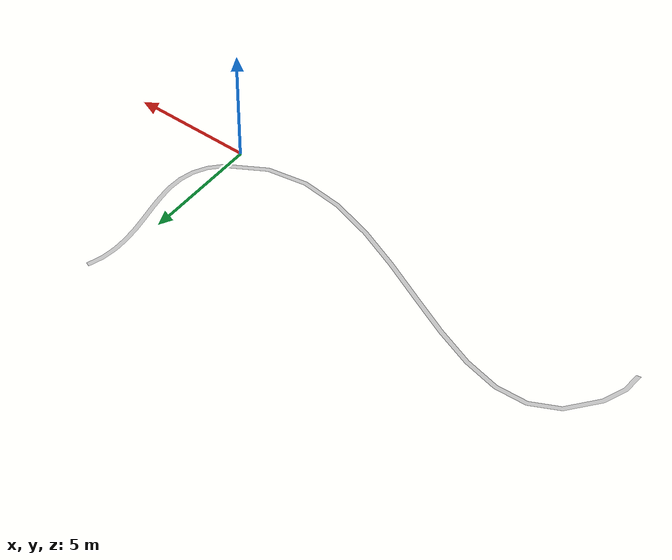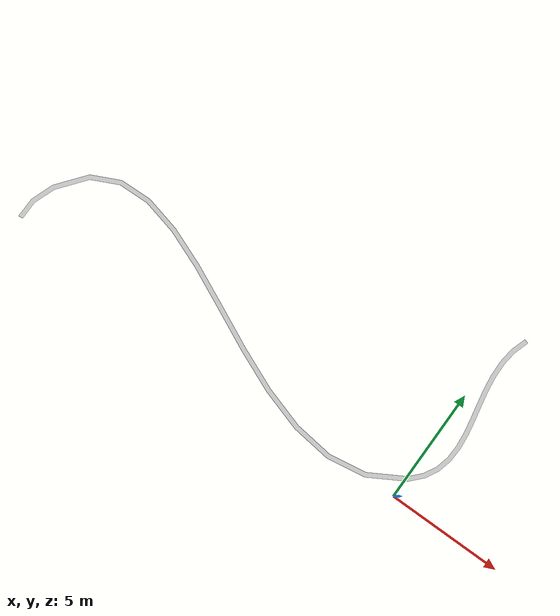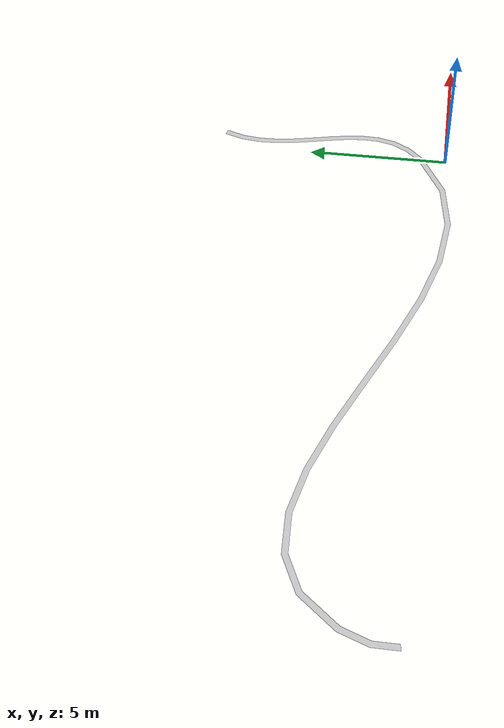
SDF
<?xml version="1.0"?>
<sdf version="1.5">
    <model name="road2_1">
        <static>true</static>
        <link name="link">
            <collision name="collision">
                <pose>0 0 0 0 0 0</pose>
                <geometry>
                    <mesh>
                        <uri>model://road2_1/meshes/road2_1.dae</uri>
                    </mesh>
                </geometry>
            </collision>
            <visual name="visual">
              <pose>0 0 0 0 0 0</pose>
              <geometry>
              <mesh>
                 <uri>model://road2_1/meshes/road2_1.dae</uri>
              </mesh>
              </geometry>
             </visual>
        </link>
    </model>
</sdf>
